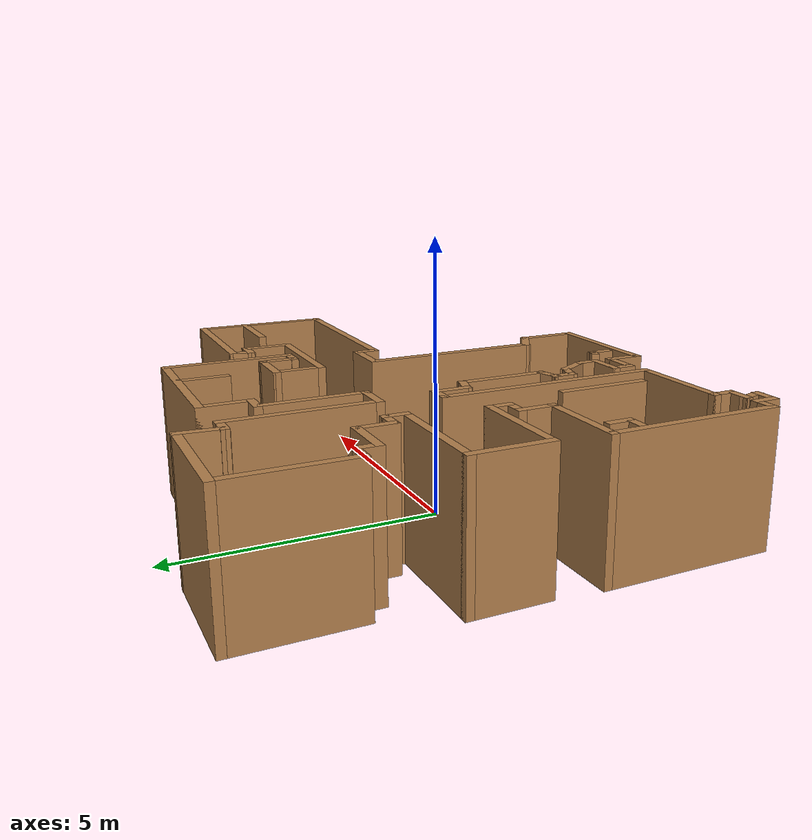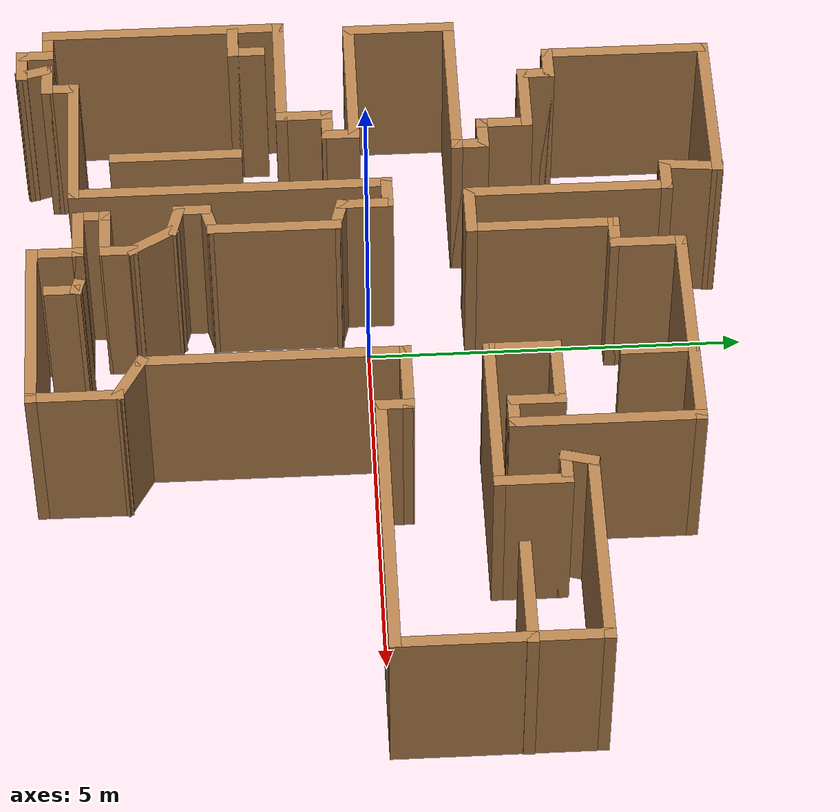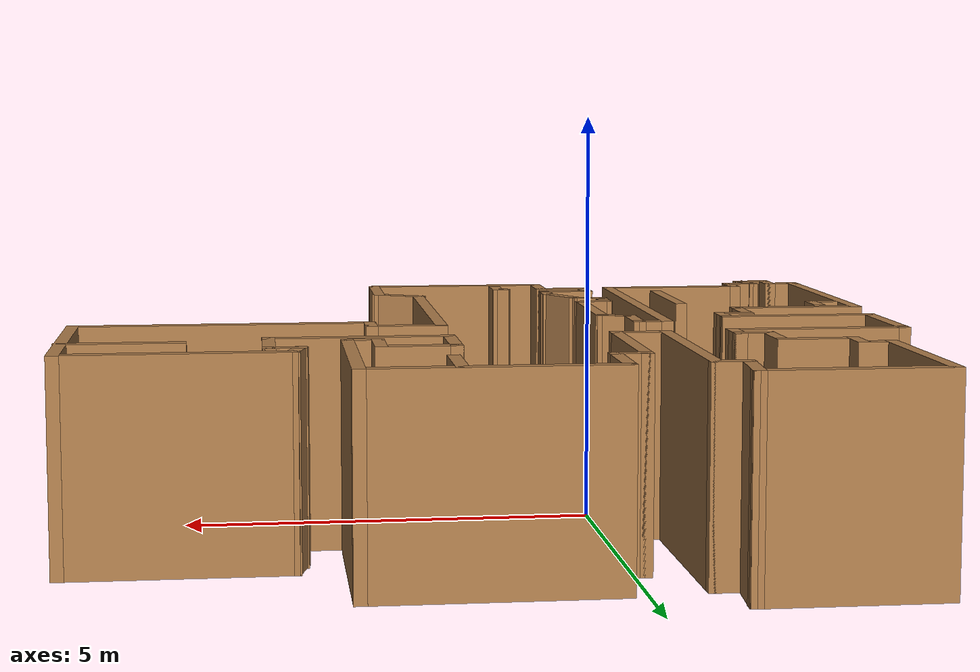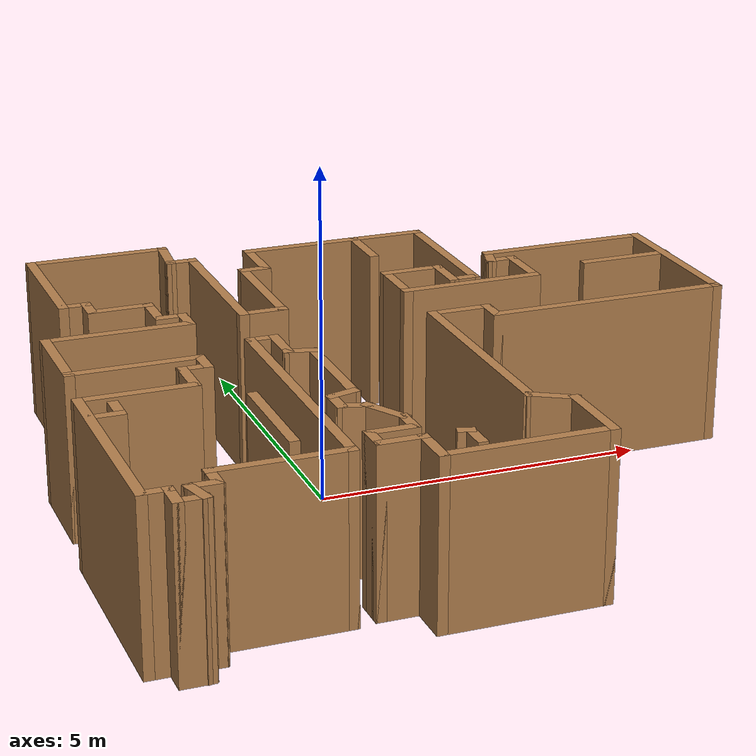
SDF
<?xml version='1.0'?>
<sdf version='1.6'>
  <model name='map_36'>
    <pose frame=''>1.28599 0.073051 0 0 -0 0</pose>
    <link name='Wall_0'>
      <collision name='Wall_0_Collision'>
        <geometry>
          <box>
            <size>2.25 0.15 2.5</size>
          </box>
        </geometry>
        <pose frame=''>0 0 1.25 0 -0 0</pose>
      </collision>
      <visual name='Wall_0_Visual'>
        <pose frame=''>0 0 1.25 0 -0 0</pose>
        <geometry>
          <box>
            <size>2.25 0.15 2.5</size>
          </box>
        </geometry>
        <material>
          <script>
            <uri>file://media/materials/scripts/gazebo.material</uri>
            <name>Gazebo/Wood</name>
          </script>
          <ambient>1 1 1 1</ambient>
        </material>
        <meta>
          <layer>0</layer>
        </meta>
      </visual>
      <pose frame=''>-3.34541 4.58019 0 0 -0 3.14159</pose>
    </link>
    <link name='Wall_1'>
      <collision name='Wall_1_Collision'>
        <geometry>
          <box>
            <size>2.25 0.15 2.5</size>
          </box>
        </geometry>
        <pose frame=''>0 0 1.25 0 -0 0</pose>
      </collision>
      <visual name='Wall_1_Visual'>
        <pose frame=''>0 0 1.25 0 -0 0</pose>
        <geometry>
          <box>
            <size>2.25 0.15 2.5</size>
          </box>
        </geometry>
        <material>
          <script>
            <uri>file://media/materials/scripts/gazebo.material</uri>
            <name>Gazebo/Wood</name>
          </script>
          <ambient>1 1 1 1</ambient>
        </material>
        <meta>
          <layer>0</layer>
        </meta>
      </visual>
      <pose frame=''>-4.39541 3.53019 0 0 -0 -1.5708</pose>
    </link>
    <link name='Wall_100'>
      <collision name='Wall_100_Collision'>
        <geometry>
          <box>
            <size>0.5 0.15 2.5</size>
          </box>
        </geometry>
        <pose frame=''>0 0 1.25 0 -0 0</pose>
      </collision>
      <visual name='Wall_100_Visual'>
        <pose frame=''>0 0 1.25 0 -0 0</pose>
        <geometry>
          <box>
            <size>0.5 0.15 2.5</size>
          </box>
        </geometry>
        <material>
          <script>
            <uri>file://media/materials/scripts/gazebo.material</uri>
            <name>Gazebo/Wood</name>
          </script>
          <ambient>1 1 1 1</ambient>
        </material>
        <meta>
          <layer>0</layer>
        </meta>
      </visual>
      <pose frame=''>-0.62594 -4.0171 0 0 -0 -1.5708</pose>
    </link>
    <link name='Wall_17'>
      <collision name='Wall_17_Collision'>
        <geometry>
          <box>
            <size>1 0.15 2.5</size>
          </box>
        </geometry>
        <pose frame=''>0 0 1.25 0 -0 0</pose>
      </collision>
      <visual name='Wall_17_Visual'>
        <pose frame=''>0 0 1.25 0 -0 0</pose>
        <geometry>
          <box>
            <size>1 0.15 2.5</size>
          </box>
        </geometry>
        <material>
          <script>
            <uri>file://media/materials/scripts/gazebo.material</uri>
            <name>Gazebo/Wood</name>
          </script>
          <ambient>1 1 1 1</ambient>
        </material>
        <meta>
          <layer>0</layer>
        </meta>
      </visual>
      <pose frame=''>-3.62041 2.13019 0 0 -0 0</pose>
    </link>
    <link name='Wall_18'>
      <collision name='Wall_18_Collision'>
        <geometry>
          <box>
            <size>0.75 0.15 2.5</size>
          </box>
        </geometry>
        <pose frame=''>0 0 1.25 0 -0 0</pose>
      </collision>
      <visual name='Wall_18_Visual'>
        <pose frame=''>0 0 1.25 0 -0 0</pose>
        <geometry>
          <box>
            <size>0.75 0.15 2.5</size>
          </box>
        </geometry>
        <material>
          <script>
            <uri>file://media/materials/scripts/gazebo.material</uri>
            <name>Gazebo/Wood</name>
          </script>
          <ambient>1 1 1 1</ambient>
        </material>
        <meta>
          <layer>0</layer>
        </meta>
      </visual>
      <pose frame=''>-3.19541 1.83019 0 0 -0 -1.5708</pose>
    </link>
    <link name='Wall_19'>
      <collision name='Wall_19_Collision'>
        <geometry>
          <box>
            <size>0.5 0.15 2.5</size>
          </box>
        </geometry>
        <pose frame=''>0 0 1.25 0 -0 0</pose>
      </collision>
      <visual name='Wall_19_Visual'>
        <pose frame=''>0 0 1.25 0 -0 0</pose>
        <geometry>
          <box>
            <size>0.5 0.15 2.5</size>
          </box>
        </geometry>
        <material>
          <script>
            <uri>file://media/materials/scripts/gazebo.material</uri>
            <name>Gazebo/Wood</name>
          </script>
          <ambient>1 1 1 1</ambient>
        </material>
        <meta>
          <layer>0</layer>
        </meta>
      </visual>
      <pose frame=''>-3.02041 1.53019 0 0 -0 0</pose>
    </link>
    <link name='Wall_2'>
      <collision name='Wall_2_Collision'>
        <geometry>
          <box>
            <size>0.5 0.15 2.5</size>
          </box>
        </geometry>
        <pose frame=''>0 0 1.25 0 -0 0</pose>
      </collision>
      <visual name='Wall_2_Visual'>
        <pose frame=''>0 0 1.25 0 -0 0</pose>
        <geometry>
          <box>
            <size>0.5 0.15 2.5</size>
          </box>
        </geometry>
        <material>
          <script>
            <uri>file://media/materials/scripts/gazebo.material</uri>
            <name>Gazebo/Wood</name>
          </script>
          <ambient>1 1 1 1</ambient>
        </material>
        <meta>
          <layer>0</layer>
        </meta>
      </visual>
      <pose frame=''>-4.22041 2.48019 0 0 -0 0</pose>
    </link>
    <link name='Wall_20'>
      <collision name='Wall_20_Collision'>
        <geometry>
          <box>
            <size>0.5 0.15 2.5</size>
          </box>
        </geometry>
        <pose frame=''>0 0 1.25 0 -0 0</pose>
      </collision>
      <visual name='Wall_20_Visual'>
        <pose frame=''>0 0 1.25 0 -0 0</pose>
        <geometry>
          <box>
            <size>0.5 0.15 2.5</size>
          </box>
        </geometry>
        <material>
          <script>
            <uri>file://media/materials/scripts/gazebo.material</uri>
            <name>Gazebo/Wood</name>
          </script>
          <ambient>1 1 1 1</ambient>
        </material>
        <meta>
          <layer>0</layer>
        </meta>
      </visual>
      <pose frame=''>-2.84541 1.35519 0 0 -0 -1.5708</pose>
    </link>
    <link name='Wall_21'>
      <collision name='Wall_21_Collision'>
        <geometry>
          <box>
            <size>2.25 0.15 2.5</size>
          </box>
        </geometry>
        <pose frame=''>0 0 1.25 0 -0 0</pose>
      </collision>
      <visual name='Wall_21_Visual'>
        <pose frame=''>0 0 1.25 0 -0 0</pose>
        <geometry>
          <box>
            <size>2.25 0.15 2.5</size>
          </box>
        </geometry>
        <material>
          <script>
            <uri>file://media/materials/scripts/gazebo.material</uri>
            <name>Gazebo/Wood</name>
          </script>
          <ambient>1 1 1 1</ambient>
        </material>
        <meta>
          <layer>0</layer>
        </meta>
      </visual>
      <pose frame=''>-3.89541 1.18019 0 0 -0 3.14159</pose>
    </link>
    <link name='Wall_22'>
      <collision name='Wall_22_Collision'>
        <geometry>
          <box>
            <size>1.5 0.15 2.5</size>
          </box>
        </geometry>
        <pose frame=''>0 0 1.25 0 -0 0</pose>
      </collision>
      <visual name='Wall_22_Visual'>
        <pose frame=''>0 0 1.25 0 -0 0</pose>
        <geometry>
          <box>
            <size>1.5 0.15 2.5</size>
          </box>
        </geometry>
        <material>
          <script>
            <uri>file://media/materials/scripts/gazebo.material</uri>
            <name>Gazebo/Wood</name>
          </script>
          <ambient>1 1 1 1</ambient>
        </material>
        <meta>
          <layer>0</layer>
        </meta>
      </visual>
      <pose frame=''>-4.94541 0.505193 0 0 -0 -1.5708</pose>
    </link>
    <link name='Wall_23'>
      <collision name='Wall_23_Collision'>
        <geometry>
          <box>
            <size>2 0.15 2.5</size>
          </box>
        </geometry>
        <pose frame=''>0 0 1.25 0 -0 0</pose>
      </collision>
      <visual name='Wall_23_Visual'>
        <pose frame=''>0 0 1.25 0 -0 0</pose>
        <geometry>
          <box>
            <size>2 0.15 2.5</size>
          </box>
        </geometry>
        <material>
          <script>
            <uri>file://media/materials/scripts/gazebo.material</uri>
            <name>Gazebo/Wood</name>
          </script>
          <ambient>1 1 1 1</ambient>
        </material>
        <meta>
          <layer>0</layer>
        </meta>
      </visual>
      <pose frame=''>-4.02041 -0.169807 0 0 -0 0</pose>
    </link>
    <link name='Wall_26'>
      <collision name='Wall_26_Collision'>
        <geometry>
          <box>
            <size>0.5 0.15 2.5</size>
          </box>
        </geometry>
        <pose frame=''>0 0 1.25 0 -0 0</pose>
      </collision>
      <visual name='Wall_26_Visual'>
        <pose frame=''>0 0 1.25 0 -0 0</pose>
        <geometry>
          <box>
            <size>0.5 0.15 2.5</size>
          </box>
        </geometry>
        <material>
          <script>
            <uri>file://media/materials/scripts/gazebo.material</uri>
            <name>Gazebo/Wood</name>
          </script>
          <ambient>1 1 1 1</ambient>
        </material>
        <meta>
          <layer>0</layer>
        </meta>
      </visual>
      <pose frame=''>-3.09541 -0.344807 0 0 -0 -1.5708</pose>
    </link>
    <link name='Wall_27'>
      <collision name='Wall_27_Collision'>
        <geometry>
          <box>
            <size>0.5 0.15 2.5</size>
          </box>
        </geometry>
        <pose frame=''>0 0 1.25 0 -0 0</pose>
      </collision>
      <visual name='Wall_27_Visual'>
        <pose frame=''>0 0 1.25 0 -0 0</pose>
        <geometry>
          <box>
            <size>0.5 0.15 2.5</size>
          </box>
        </geometry>
        <material>
          <script>
            <uri>file://media/materials/scripts/gazebo.material</uri>
            <name>Gazebo/Wood</name>
          </script>
          <ambient>1 1 1 1</ambient>
        </material>
        <meta>
          <layer>0</layer>
        </meta>
      </visual>
      <pose frame=''>-3.27041 -0.519807 0 0 -0 3.14159</pose>
    </link>
    <link name='Wall_28'>
      <collision name='Wall_28_Collision'>
        <geometry>
          <box>
            <size>0.75 0.15 2.5</size>
          </box>
        </geometry>
        <pose frame=''>0 0 1.25 0 -0 0</pose>
      </collision>
      <visual name='Wall_28_Visual'>
        <pose frame=''>0 0 1.25 0 -0 0</pose>
        <geometry>
          <box>
            <size>0.75 0.15 2.5</size>
          </box>
        </geometry>
        <material>
          <script>
            <uri>file://media/materials/scripts/gazebo.material</uri>
            <name>Gazebo/Wood</name>
          </script>
          <ambient>1 1 1 1</ambient>
        </material>
        <meta>
          <layer>0</layer>
        </meta>
      </visual>
      <pose frame=''>-3.44541 -0.819807 0 0 -0 -1.5708</pose>
    </link>
    <link name='Wall_29'>
      <collision name='Wall_29_Collision'>
        <geometry>
          <box>
            <size>1.75 0.15 2.5</size>
          </box>
        </geometry>
        <pose frame=''>0 0 1.25 0 -0 0</pose>
      </collision>
      <visual name='Wall_29_Visual'>
        <pose frame=''>0 0 1.25 0 -0 0</pose>
        <geometry>
          <box>
            <size>1.75 0.15 2.5</size>
          </box>
        </geometry>
        <material>
          <script>
            <uri>file://media/materials/scripts/gazebo.material</uri>
            <name>Gazebo/Wood</name>
          </script>
          <ambient>1 1 1 1</ambient>
        </material>
        <meta>
          <layer>0</layer>
        </meta>
      </visual>
      <pose frame=''>-4.24541 -1.11981 0 0 -0 3.14159</pose>
    </link>
    <link name='Wall_3'>
      <collision name='Wall_3_Collision'>
        <geometry>
          <box>
            <size>0.5 0.15 2.5</size>
          </box>
        </geometry>
        <pose frame=''>0 0 1.25 0 -0 0</pose>
      </collision>
      <visual name='Wall_3_Visual'>
        <pose frame=''>0 0 1.25 0 -0 0</pose>
        <geometry>
          <box>
            <size>0.5 0.15 2.5</size>
          </box>
        </geometry>
        <material>
          <script>
            <uri>file://media/materials/scripts/gazebo.material</uri>
            <name>Gazebo/Wood</name>
          </script>
          <ambient>1 1 1 1</ambient>
        </material>
        <meta>
          <layer>0</layer>
        </meta>
      </visual>
      <pose frame=''>-4.04541 2.30519 0 0 -0 -1.5708</pose>
    </link>
    <link name='Wall_30'>
      <collision name='Wall_30_Collision'>
        <geometry>
          <box>
            <size>3.25 0.15 2.5</size>
          </box>
        </geometry>
        <pose frame=''>0 0 1.25 0 -0 0</pose>
      </collision>
      <visual name='Wall_30_Visual'>
        <pose frame=''>0 0 1.25 0 -0 0</pose>
        <geometry>
          <box>
            <size>3.25 0.15 2.5</size>
          </box>
        </geometry>
        <material>
          <script>
            <uri>file://media/materials/scripts/gazebo.material</uri>
            <name>Gazebo/Wood</name>
          </script>
          <ambient>1 1 1 1</ambient>
        </material>
        <meta>
          <layer>0</layer>
        </meta>
      </visual>
      <pose frame=''>-5.04541 -2.66981 0 0 -0 -1.5708</pose>
    </link>
    <link name='Wall_31'>
      <collision name='Wall_31_Collision'>
        <geometry>
          <box>
            <size>0.5 0.15 2.5</size>
          </box>
        </geometry>
        <pose frame=''>0 0 1.25 0 -0 0</pose>
      </collision>
      <visual name='Wall_31_Visual'>
        <pose frame=''>0 0 1.25 0 -0 0</pose>
        <geometry>
          <box>
            <size>0.5 0.15 2.5</size>
          </box>
        </geometry>
        <material>
          <script>
            <uri>file://media/materials/scripts/gazebo.material</uri>
            <name>Gazebo/Wood</name>
          </script>
          <ambient>1 1 1 1</ambient>
        </material>
        <meta>
          <layer>0</layer>
        </meta>
      </visual>
      <pose frame=''>-4.87041 -4.21981 0 0 -0 0</pose>
    </link>
    <link name='Wall_35'>
      <collision name='Wall_35_Collision'>
        <geometry>
          <box>
            <size>0.5 0.15 2.5</size>
          </box>
        </geometry>
        <pose frame=''>0 0 1.25 0 -0 0</pose>
      </collision>
      <visual name='Wall_35_Visual'>
        <pose frame=''>0 0 1.25 0 -0 0</pose>
        <geometry>
          <box>
            <size>0.5 0.15 2.5</size>
          </box>
        </geometry>
        <material>
          <script>
            <uri>file://media/materials/scripts/gazebo.material</uri>
            <name>Gazebo/Wood</name>
          </script>
          <ambient>1 1 1 1</ambient>
        </material>
        <meta>
          <layer>0</layer>
        </meta>
      </visual>
      <pose frame=''>-4.69541 -4.39481 0 0 -0 -1.5708</pose>
    </link>
    <link name='Wall_36'>
      <collision name='Wall_36_Collision'>
        <geometry>
          <box>
            <size>0.5 0.15 2.5</size>
          </box>
        </geometry>
        <pose frame=''>0 0 1.25 0 -0 0</pose>
      </collision>
      <visual name='Wall_36_Visual'>
        <pose frame=''>0 0 1.25 0 -0 0</pose>
        <geometry>
          <box>
            <size>0.5 0.15 2.5</size>
          </box>
        </geometry>
        <material>
          <script>
            <uri>file://media/materials/scripts/gazebo.material</uri>
            <name>Gazebo/Wood</name>
          </script>
          <ambient>1 1 1 1</ambient>
        </material>
        <meta>
          <layer>0</layer>
        </meta>
      </visual>
      <pose frame=''>-4.52041 -4.56981 0 0 -0 0</pose>
    </link>
    <link name='Wall_37'>
      <collision name='Wall_37_Collision'>
        <geometry>
          <box>
            <size>0.5 0.15 2.5</size>
          </box>
        </geometry>
        <pose frame=''>0 0 1.25 0 -0 0</pose>
      </collision>
      <visual name='Wall_37_Visual'>
        <pose frame=''>0 0 1.25 0 -0 0</pose>
        <geometry>
          <box>
            <size>0.5 0.15 2.5</size>
          </box>
        </geometry>
        <material>
          <script>
            <uri>file://media/materials/scripts/gazebo.material</uri>
            <name>Gazebo/Wood</name>
          </script>
          <ambient>1 1 1 1</ambient>
        </material>
        <meta>
          <layer>0</layer>
        </meta>
      </visual>
      <pose frame=''>-4.39071 -4.40077 0 0 -0 1.8326</pose>
    </link>
    <link name='Wall_38'>
      <collision name='Wall_38_Collision'>
        <geometry>
          <box>
            <size>0.5 0.15 2.5</size>
          </box>
        </geometry>
        <pose frame=''>0 0 1.25 0 -0 0</pose>
      </collision>
      <visual name='Wall_38_Visual'>
        <pose frame=''>0 0 1.25 0 -0 0</pose>
        <geometry>
          <box>
            <size>0.5 0.15 2.5</size>
          </box>
        </geometry>
        <material>
          <script>
            <uri>file://media/materials/scripts/gazebo.material</uri>
            <name>Gazebo/Wood</name>
          </script>
          <ambient>1 1 1 1</ambient>
        </material>
        <meta>
          <layer>0</layer>
        </meta>
      </visual>
      <pose frame=''>-4.261 -4.23173 0 0 -0 0</pose>
    </link>
    <link name='Wall_39'>
      <collision name='Wall_39_Collision'>
        <geometry>
          <box>
            <size>0.5 0.15 2.5</size>
          </box>
        </geometry>
        <pose frame=''>0 0 1.25 0 -0 0</pose>
      </collision>
      <visual name='Wall_39_Visual'>
        <pose frame=''>0 0 1.25 0 -0 0</pose>
        <geometry>
          <box>
            <size>0.5 0.15 2.5</size>
          </box>
        </geometry>
        <material>
          <script>
            <uri>file://media/materials/scripts/gazebo.material</uri>
            <name>Gazebo/Wood</name>
          </script>
          <ambient>1 1 1 1</ambient>
        </material>
        <meta>
          <layer>0</layer>
        </meta>
      </visual>
      <pose frame=''>-4.086 -4.05673 0 0 -0 1.5708</pose>
    </link>
    <link name='Wall_40'>
      <collision name='Wall_40_Collision'>
        <geometry>
          <box>
            <size>2 0.15 2.5</size>
          </box>
        </geometry>
        <pose frame=''>0 0 1.25 0 -0 0</pose>
      </collision>
      <visual name='Wall_40_Visual'>
        <pose frame=''>0 0 1.25 0 -0 0</pose>
        <geometry>
          <box>
            <size>2 0.15 2.5</size>
          </box>
        </geometry>
        <material>
          <script>
            <uri>file://media/materials/scripts/gazebo.material</uri>
            <name>Gazebo/Wood</name>
          </script>
          <ambient>1 1 1 1</ambient>
        </material>
        <meta>
          <layer>0</layer>
        </meta>
      </visual>
      <pose frame=''>-3.161 -3.88173 0 0 -0 0</pose>
    </link>
    <link name='Wall_41'>
      <collision name='Wall_41_Collision'>
        <geometry>
          <box>
            <size>4.25 0.15 2.5</size>
          </box>
        </geometry>
        <pose frame=''>0 0 1.25 0 -0 0</pose>
      </collision>
      <visual name='Wall_41_Visual'>
        <pose frame=''>0 0 1.25 0 -0 0</pose>
        <geometry>
          <box>
            <size>4.25 0.15 2.5</size>
          </box>
        </geometry>
        <material>
          <script>
            <uri>file://media/materials/scripts/gazebo.material</uri>
            <name>Gazebo/Wood</name>
          </script>
          <ambient>1 1 1 1</ambient>
        </material>
        <meta>
          <layer>0</layer>
        </meta>
      </visual>
      <pose frame=''>-2.236 -1.83173 0 0 -0 1.5708</pose>
    </link>
    <link name='Wall_42'>
      <collision name='Wall_42_Collision'>
        <geometry>
          <box>
            <size>0.5 0.15 2.5</size>
          </box>
        </geometry>
        <pose frame=''>0 0 1.25 0 -0 0</pose>
      </collision>
      <visual name='Wall_42_Visual'>
        <pose frame=''>0 0 1.25 0 -0 0</pose>
        <geometry>
          <box>
            <size>0.5 0.15 2.5</size>
          </box>
        </geometry>
        <material>
          <script>
            <uri>file://media/materials/scripts/gazebo.material</uri>
            <name>Gazebo/Wood</name>
          </script>
          <ambient>1 1 1 1</ambient>
        </material>
        <meta>
          <layer>0</layer>
        </meta>
      </visual>
      <pose frame=''>-2.061 0.218267 0 0 -0 0</pose>
    </link>
    <link name='Wall_43'>
      <collision name='Wall_43_Collision'>
        <geometry>
          <box>
            <size>0.75 0.15 2.5</size>
          </box>
        </geometry>
        <pose frame=''>0 0 1.25 0 -0 0</pose>
      </collision>
      <visual name='Wall_43_Visual'>
        <pose frame=''>0 0 1.25 0 -0 0</pose>
        <geometry>
          <box>
            <size>0.75 0.15 2.5</size>
          </box>
        </geometry>
        <material>
          <script>
            <uri>file://media/materials/scripts/gazebo.material</uri>
            <name>Gazebo/Wood</name>
          </script>
          <ambient>1 1 1 1</ambient>
        </material>
        <meta>
          <layer>0</layer>
        </meta>
      </visual>
      <pose frame=''>-1.886 -0.081733 0 0 -0 -1.5708</pose>
    </link>
    <link name='Wall_44'>
      <collision name='Wall_44_Collision'>
        <geometry>
          <box>
            <size>0.5 0.15 2.5</size>
          </box>
        </geometry>
        <pose frame=''>0 0 1.25 0 -0 0</pose>
      </collision>
      <visual name='Wall_44_Visual'>
        <pose frame=''>0 0 1.25 0 -0 0</pose>
        <geometry>
          <box>
            <size>0.5 0.15 2.5</size>
          </box>
        </geometry>
        <material>
          <script>
            <uri>file://media/materials/scripts/gazebo.material</uri>
            <name>Gazebo/Wood</name>
          </script>
          <ambient>1 1 1 1</ambient>
        </material>
        <meta>
          <layer>0</layer>
        </meta>
      </visual>
      <pose frame=''>-1.71696 -0.427026 0 0 -0 -0.261799</pose>
    </link>
    <link name='Wall_45'>
      <collision name='Wall_45_Collision'>
        <geometry>
          <box>
            <size>1.75 0.15 2.5</size>
          </box>
        </geometry>
        <pose frame=''>0 0 1.25 0 -0 0</pose>
      </collision>
      <visual name='Wall_45_Visual'>
        <pose frame=''>0 0 1.25 0 -0 0</pose>
        <geometry>
          <box>
            <size>1.75 0.15 2.5</size>
          </box>
        </geometry>
        <material>
          <script>
            <uri>file://media/materials/scripts/gazebo.material</uri>
            <name>Gazebo/Wood</name>
          </script>
          <ambient>1 1 1 1</ambient>
        </material>
        <meta>
          <layer>0</layer>
        </meta>
      </visual>
      <pose frame=''>-1.54793 -1.27232 0 0 -0 -1.5708</pose>
    </link>
    <link name='Wall_46'>
      <collision name='Wall_46_Collision'>
        <geometry>
          <box>
            <size>0.5 0.15 2.5</size>
          </box>
        </geometry>
        <pose frame=''>0 0 1.25 0 -0 0</pose>
      </collision>
      <visual name='Wall_46_Visual'>
        <pose frame=''>0 0 1.25 0 -0 0</pose>
        <geometry>
          <box>
            <size>0.5 0.15 2.5</size>
          </box>
        </geometry>
        <material>
          <script>
            <uri>file://media/materials/scripts/gazebo.material</uri>
            <name>Gazebo/Wood</name>
          </script>
          <ambient>1 1 1 1</ambient>
        </material>
        <meta>
          <layer>0</layer>
        </meta>
      </visual>
      <pose frame=''>-1.71696 -2.11761 0 0 -0 -2.87979</pose>
    </link>
    <link name='Wall_47'>
      <collision name='Wall_47_Collision'>
        <geometry>
          <box>
            <size>0.5 0.15 2.5</size>
          </box>
        </geometry>
        <pose frame=''>0 0 1.25 0 -0 0</pose>
      </collision>
      <visual name='Wall_47_Visual'>
        <pose frame=''>0 0 1.25 0 -0 0</pose>
        <geometry>
          <box>
            <size>0.5 0.15 2.5</size>
          </box>
        </geometry>
        <material>
          <script>
            <uri>file://media/materials/scripts/gazebo.material</uri>
            <name>Gazebo/Wood</name>
          </script>
          <ambient>1 1 1 1</ambient>
        </material>
        <meta>
          <layer>0</layer>
        </meta>
      </visual>
      <pose frame=''>-1.886 -2.33791 0 0 -0 -1.5708</pose>
    </link>
    <link name='Wall_48'>
      <collision name='Wall_48_Collision'>
        <geometry>
          <box>
            <size>0.5 0.15 2.5</size>
          </box>
        </geometry>
        <pose frame=''>0 0 1.25 0 -0 0</pose>
      </collision>
      <visual name='Wall_48_Visual'>
        <pose frame=''>0 0 1.25 0 -0 0</pose>
        <geometry>
          <box>
            <size>0.5 0.15 2.5</size>
          </box>
        </geometry>
        <material>
          <script>
            <uri>file://media/materials/scripts/gazebo.material</uri>
            <name>Gazebo/Wood</name>
          </script>
          <ambient>1 1 1 1</ambient>
        </material>
        <meta>
          <layer>0</layer>
        </meta>
      </visual>
      <pose frame=''>-1.71696 -2.5582 0 0 -0 -0.261799</pose>
    </link>
    <link name='Wall_49'>
      <collision name='Wall_49_Collision'>
        <geometry>
          <box>
            <size>0.75 0.15 2.5</size>
          </box>
        </geometry>
        <pose frame=''>0 0 1.25 0 -0 0</pose>
      </collision>
      <visual name='Wall_49_Visual'>
        <pose frame=''>0 0 1.25 0 -0 0</pose>
        <geometry>
          <box>
            <size>0.75 0.15 2.5</size>
          </box>
        </geometry>
        <material>
          <script>
            <uri>file://media/materials/scripts/gazebo.material</uri>
            <name>Gazebo/Wood</name>
          </script>
          <ambient>1 1 1 1</ambient>
        </material>
        <meta>
          <layer>0</layer>
        </meta>
      </visual>
      <pose frame=''>-1.39793 -2.8633 0 0 -0 -1.0472</pose>
    </link>
    <link name='Wall_50'>
      <collision name='Wall_50_Collision'>
        <geometry>
          <box>
            <size>0.5 0.15 2.5</size>
          </box>
        </geometry>
        <pose frame=''>0 0 1.25 0 -0 0</pose>
      </collision>
      <visual name='Wall_50_Visual'>
        <pose frame=''>0 0 1.25 0 -0 0</pose>
        <geometry>
          <box>
            <size>0.5 0.15 2.5</size>
          </box>
        </geometry>
        <material>
          <script>
            <uri>file://media/materials/scripts/gazebo.material</uri>
            <name>Gazebo/Wood</name>
          </script>
          <ambient>1 1 1 1</ambient>
        </material>
        <meta>
          <layer>0</layer>
        </meta>
      </visual>
      <pose frame=''>-1.24793 -3.29811 0 0 -0 -1.5708</pose>
    </link>
    <link name='Wall_51'>
      <collision name='Wall_51_Collision'>
        <geometry>
          <box>
            <size>0.75 0.15 2.5</size>
          </box>
        </geometry>
        <pose frame=''>0 0 1.25 0 -0 0</pose>
      </collision>
      <visual name='Wall_51_Visual'>
        <pose frame=''>0 0 1.25 0 -0 0</pose>
        <geometry>
          <box>
            <size>0.75 0.15 2.5</size>
          </box>
        </geometry>
        <material>
          <script>
            <uri>file://media/materials/scripts/gazebo.material</uri>
            <name>Gazebo/Wood</name>
          </script>
          <ambient>1 1 1 1</ambient>
        </material>
        <meta>
          <layer>0</layer>
        </meta>
      </visual>
      <pose frame=''>-1.54793 -3.47311 0 0 -0 3.14159</pose>
    </link>
    <link name='Wall_52'>
      <collision name='Wall_52_Collision'>
        <geometry>
          <box>
            <size>0.5 0.15 2.5</size>
          </box>
        </geometry>
        <pose frame=''>0 0 1.25 0 -0 0</pose>
      </collision>
      <visual name='Wall_52_Visual'>
        <pose frame=''>0 0 1.25 0 -0 0</pose>
        <geometry>
          <box>
            <size>0.5 0.15 2.5</size>
          </box>
        </geometry>
        <material>
          <script>
            <uri>file://media/materials/scripts/gazebo.material</uri>
            <name>Gazebo/Wood</name>
          </script>
          <ambient>1 1 1 1</ambient>
        </material>
        <meta>
          <layer>0</layer>
        </meta>
      </visual>
      <pose frame=''>-1.84793 -3.64811 0 0 -0 -1.5708</pose>
    </link>
    <link name='Wall_53'>
      <collision name='Wall_53_Collision'>
        <geometry>
          <box>
            <size>0.75 0.15 2.5</size>
          </box>
        </geometry>
        <pose frame=''>0 0 1.25 0 -0 0</pose>
      </collision>
      <visual name='Wall_53_Visual'>
        <pose frame=''>0 0 1.25 0 -0 0</pose>
        <geometry>
          <box>
            <size>0.75 0.15 2.5</size>
          </box>
        </geometry>
        <material>
          <script>
            <uri>file://media/materials/scripts/gazebo.material</uri>
            <name>Gazebo/Wood</name>
          </script>
          <ambient>1 1 1 1</ambient>
        </material>
        <meta>
          <layer>0</layer>
        </meta>
      </visual>
      <pose frame=''>-1.54793 -3.82311 0 0 -0 0</pose>
    </link>
    <link name='Wall_54'>
      <collision name='Wall_54_Collision'>
        <geometry>
          <box>
            <size>0.75 0.15 2.5</size>
          </box>
        </geometry>
        <pose frame=''>0 0 1.25 0 -0 0</pose>
      </collision>
      <visual name='Wall_54_Visual'>
        <pose frame=''>0 0 1.25 0 -0 0</pose>
        <geometry>
          <box>
            <size>0.75 0.15 2.5</size>
          </box>
        </geometry>
        <material>
          <script>
            <uri>file://media/materials/scripts/gazebo.material</uri>
            <name>Gazebo/Wood</name>
          </script>
          <ambient>1 1 1 1</ambient>
        </material>
        <meta>
          <layer>0</layer>
        </meta>
      </visual>
      <pose frame=''>-1.24793 -4.12311 0 0 -0 -1.5708</pose>
    </link>
    <link name='Wall_57'>
      <collision name='Wall_57_Collision'>
        <geometry>
          <box>
            <size>2.5 0.15 2.5</size>
          </box>
        </geometry>
        <pose frame=''>0 0 1.25 0 -0 0</pose>
      </collision>
      <visual name='Wall_57_Visual'>
        <pose frame=''>0 0 1.25 0 -0 0</pose>
        <geometry>
          <box>
            <size>2.5 0.15 2.5</size>
          </box>
        </geometry>
        <material>
          <script>
            <uri>file://media/materials/scripts/gazebo.material</uri>
            <name>Gazebo/Wood</name>
          </script>
          <ambient>1 1 1 1</ambient>
        </material>
        <meta>
          <layer>0</layer>
        </meta>
      </visual>
      <pose frame=''>-0.072926 -4.42311 0 0 -0 0</pose>
    </link>
    <link name='Wall_58'>
      <collision name='Wall_58_Collision'>
        <geometry>
          <box>
            <size>1.25 0.15 2.5</size>
          </box>
        </geometry>
        <pose frame=''>0 0 1.25 0 -0 0</pose>
      </collision>
      <visual name='Wall_58_Visual'>
        <pose frame=''>0 0 1.25 0 -0 0</pose>
        <geometry>
          <box>
            <size>1.25 0.15 2.5</size>
          </box>
        </geometry>
        <material>
          <script>
            <uri>file://media/materials/scripts/gazebo.material</uri>
            <name>Gazebo/Wood</name>
          </script>
          <ambient>1 1 1 1</ambient>
        </material>
        <meta>
          <layer>0</layer>
        </meta>
      </visual>
      <pose frame=''>1.10207 -3.87311 0 0 -0 1.5708</pose>
    </link>
    <link name='Wall_59'>
      <collision name='Wall_59_Collision'>
        <geometry>
          <box>
            <size>0.75 0.15 2.5</size>
          </box>
        </geometry>
        <pose frame=''>0 0 1.25 0 -0 0</pose>
      </collision>
      <visual name='Wall_59_Visual'>
        <pose frame=''>0 0 1.25 0 -0 0</pose>
        <geometry>
          <box>
            <size>0.75 0.15 2.5</size>
          </box>
        </geometry>
        <material>
          <script>
            <uri>file://media/materials/scripts/gazebo.material</uri>
            <name>Gazebo/Wood</name>
          </script>
          <ambient>1 1 1 1</ambient>
        </material>
        <meta>
          <layer>0</layer>
        </meta>
      </visual>
      <pose frame=''>0.842266 -3.17311 0 0 -0 2.61799</pose>
    </link>
    <link name='Wall_60'>
      <collision name='Wall_60_Collision'>
        <geometry>
          <box>
            <size>3.5 0.15 2.5</size>
          </box>
        </geometry>
        <pose frame=''>0 0 1.25 0 -0 0</pose>
      </collision>
      <visual name='Wall_60_Visual'>
        <pose frame=''>0 0 1.25 0 -0 0</pose>
        <geometry>
          <box>
            <size>3.5 0.15 2.5</size>
          </box>
        </geometry>
        <material>
          <script>
            <uri>file://media/materials/scripts/gazebo.material</uri>
            <name>Gazebo/Wood</name>
          </script>
          <ambient>1 1 1 1</ambient>
        </material>
        <meta>
          <layer>0</layer>
        </meta>
      </visual>
      <pose frame=''>0.582459 -1.34811 0 0 -0 1.5708</pose>
    </link>
    <link name='Wall_65'>
      <collision name='Wall_65_Collision'>
        <geometry>
          <box>
            <size>1 0.15 2.5</size>
          </box>
        </geometry>
        <pose frame=''>0 0 1.25 0 -0 0</pose>
      </collision>
      <visual name='Wall_65_Visual'>
        <pose frame=''>0 0 1.25 0 -0 0</pose>
        <geometry>
          <box>
            <size>1 0.15 2.5</size>
          </box>
        </geometry>
        <material>
          <script>
            <uri>file://media/materials/scripts/gazebo.material</uri>
            <name>Gazebo/Wood</name>
          </script>
          <ambient>1 1 1 1</ambient>
        </material>
        <meta>
          <layer>0</layer>
        </meta>
      </visual>
      <pose frame=''>1.00746 0.326892 0 0 -0 0</pose>
    </link>
    <link name='Wall_66'>
      <collision name='Wall_66_Collision'>
        <geometry>
          <box>
            <size>0.5 0.15 2.5</size>
          </box>
        </geometry>
        <pose frame=''>0 0 1.25 0 -0 0</pose>
      </collision>
      <visual name='Wall_66_Visual'>
        <pose frame=''>0 0 1.25 0 -0 0</pose>
        <geometry>
          <box>
            <size>0.5 0.15 2.5</size>
          </box>
        </geometry>
        <material>
          <script>
            <uri>file://media/materials/scripts/gazebo.material</uri>
            <name>Gazebo/Wood</name>
          </script>
          <ambient>1 1 1 1</ambient>
        </material>
        <meta>
          <layer>0</layer>
        </meta>
      </visual>
      <pose frame=''>1.43246 0.151892 0 0 -0 -1.5708</pose>
    </link>
    <link name='Wall_67'>
      <collision name='Wall_67_Collision'>
        <geometry>
          <box>
            <size>3.75 0.15 2.5</size>
          </box>
        </geometry>
        <pose frame=''>0 0 1.25 0 -0 0</pose>
      </collision>
      <visual name='Wall_67_Visual'>
        <pose frame=''>0 0 1.25 0 -0 0</pose>
        <geometry>
          <box>
            <size>3.75 0.15 2.5</size>
          </box>
        </geometry>
        <material>
          <script>
            <uri>file://media/materials/scripts/gazebo.material</uri>
            <name>Gazebo/Wood</name>
          </script>
          <ambient>1 1 1 1</ambient>
        </material>
        <meta>
          <layer>0</layer>
        </meta>
      </visual>
      <pose frame=''>3.23246 -0.023108 0 0 -0 0</pose>
    </link>
    <link name='Wall_68'>
      <collision name='Wall_68_Collision'>
        <geometry>
          <box>
            <size>2.75 0.15 2.5</size>
          </box>
        </geometry>
        <pose frame=''>0 0 1.25 0 -0 0</pose>
      </collision>
      <visual name='Wall_68_Visual'>
        <pose frame=''>0 0 1.25 0 -0 0</pose>
        <geometry>
          <box>
            <size>2.75 0.15 2.5</size>
          </box>
        </geometry>
        <material>
          <script>
            <uri>file://media/materials/scripts/gazebo.material</uri>
            <name>Gazebo/Wood</name>
          </script>
          <ambient>1 1 1 1</ambient>
        </material>
        <meta>
          <layer>0</layer>
        </meta>
      </visual>
      <pose frame=''>5.03246 1.27689 0 0 -0 1.5708</pose>
    </link>
    <link name='Wall_69'>
      <collision name='Wall_69_Collision'>
        <geometry>
          <box>
            <size>2.75 0.15 2.5</size>
          </box>
        </geometry>
        <pose frame=''>0 0 1.25 0 -0 0</pose>
      </collision>
      <visual name='Wall_69_Visual'>
        <pose frame=''>0 0 1.25 0 -0 0</pose>
        <geometry>
          <box>
            <size>2.75 0.15 2.5</size>
          </box>
        </geometry>
        <material>
          <script>
            <uri>file://media/materials/scripts/gazebo.material</uri>
            <name>Gazebo/Wood</name>
          </script>
          <ambient>1 1 1 1</ambient>
        </material>
        <meta>
          <layer>0</layer>
        </meta>
      </visual>
      <pose frame=''>3.73246 2.57689 0 0 -0 3.14159</pose>
    </link>
    <link name='Wall_70'>
      <collision name='Wall_70_Collision'>
        <geometry>
          <box>
            <size>0.5 0.15 2.5</size>
          </box>
        </geometry>
        <pose frame=''>0 0 1.25 0 -0 0</pose>
      </collision>
      <visual name='Wall_70_Visual'>
        <pose frame=''>0 0 1.25 0 -0 0</pose>
        <geometry>
          <box>
            <size>0.5 0.15 2.5</size>
          </box>
        </geometry>
        <material>
          <script>
            <uri>file://media/materials/scripts/gazebo.material</uri>
            <name>Gazebo/Wood</name>
          </script>
          <ambient>1 1 1 1</ambient>
        </material>
        <meta>
          <layer>0</layer>
        </meta>
      </visual>
      <pose frame=''>2.38716 2.40786 0 0 -0 -1.8326</pose>
    </link>
    <link name='Wall_71'>
      <collision name='Wall_71_Collision'>
        <geometry>
          <box>
            <size>0.5 0.15 2.5</size>
          </box>
        </geometry>
        <pose frame=''>0 0 1.25 0 -0 0</pose>
      </collision>
      <visual name='Wall_71_Visual'>
        <pose frame=''>0 0 1.25 0 -0 0</pose>
        <geometry>
          <box>
            <size>0.5 0.15 2.5</size>
          </box>
        </geometry>
        <material>
          <script>
            <uri>file://media/materials/scripts/gazebo.material</uri>
            <name>Gazebo/Wood</name>
          </script>
          <ambient>1 1 1 1</ambient>
        </material>
        <meta>
          <layer>0</layer>
        </meta>
      </visual>
      <pose frame=''>2.51687 2.23882 0 0 -0 0</pose>
    </link>
    <link name='Wall_72'>
      <collision name='Wall_72_Collision'>
        <geometry>
          <box>
            <size>1 0.15 2.5</size>
          </box>
        </geometry>
        <pose frame=''>0 0 1.25 0 -0 0</pose>
      </collision>
      <visual name='Wall_72_Visual'>
        <pose frame=''>0 0 1.25 0 -0 0</pose>
        <geometry>
          <box>
            <size>1 0.15 2.5</size>
          </box>
        </geometry>
        <material>
          <script>
            <uri>file://media/materials/scripts/gazebo.material</uri>
            <name>Gazebo/Wood</name>
          </script>
          <ambient>1 1 1 1</ambient>
        </material>
        <meta>
          <layer>0</layer>
        </meta>
      </visual>
      <pose frame=''>2.69187 1.81382 0 0 -0 -1.5708</pose>
    </link>
    <link name='Wall_73'>
      <collision name='Wall_73_Collision'>
        <geometry>
          <box>
            <size>2.25 0.15 2.5</size>
          </box>
        </geometry>
        <pose frame=''>0 0 1.25 0 -0 0</pose>
      </collision>
      <visual name='Wall_73_Visual'>
        <pose frame=''>0 0 1.25 0 -0 0</pose>
        <geometry>
          <box>
            <size>2.25 0.15 2.5</size>
          </box>
        </geometry>
        <material>
          <script>
            <uri>file://media/materials/scripts/gazebo.material</uri>
            <name>Gazebo/Wood</name>
          </script>
          <ambient>1 1 1 1</ambient>
        </material>
        <meta>
          <layer>0</layer>
        </meta>
      </visual>
      <pose frame=''>1.64187 1.38882 0 0 -0 3.14159</pose>
    </link>
    <link name='Wall_74'>
      <collision name='Wall_74_Collision'>
        <geometry>
          <box>
            <size>1 0.15 2.5</size>
          </box>
        </geometry>
        <pose frame=''>0 0 1.25 0 -0 0</pose>
      </collision>
      <visual name='Wall_74_Visual'>
        <pose frame=''>0 0 1.25 0 -0 0</pose>
        <geometry>
          <box>
            <size>1 0.15 2.5</size>
          </box>
        </geometry>
        <material>
          <script>
            <uri>file://media/materials/scripts/gazebo.material</uri>
            <name>Gazebo/Wood</name>
          </script>
          <ambient>1 1 1 1</ambient>
        </material>
        <meta>
          <layer>0</layer>
        </meta>
      </visual>
      <pose frame=''>0.591872 1.81382 0 0 -0 1.5708</pose>
    </link>
    <link name='Wall_75'>
      <collision name='Wall_75_Collision'>
        <geometry>
          <box>
            <size>1 0.15 2.5</size>
          </box>
        </geometry>
        <pose frame=''>0 0 1.25 0 -0 0</pose>
      </collision>
      <visual name='Wall_75_Visual'>
        <pose frame=''>0 0 1.25 0 -0 0</pose>
        <geometry>
          <box>
            <size>1 0.15 2.5</size>
          </box>
        </geometry>
        <material>
          <script>
            <uri>file://media/materials/scripts/gazebo.material</uri>
            <name>Gazebo/Wood</name>
          </script>
          <ambient>1 1 1 1</ambient>
        </material>
        <meta>
          <layer>0</layer>
        </meta>
      </visual>
      <pose frame=''>1.01687 2.23882 0 0 -0 0</pose>
    </link>
    <link name='Wall_76'>
      <collision name='Wall_76_Collision'>
        <geometry>
          <box>
            <size>0.75 0.15 2.5</size>
          </box>
        </geometry>
        <pose frame=''>0 0 1.25 0 -0 0</pose>
      </collision>
      <visual name='Wall_76_Visual'>
        <pose frame=''>0 0 1.25 0 -0 0</pose>
        <geometry>
          <box>
            <size>0.75 0.15 2.5</size>
          </box>
        </geometry>
        <material>
          <script>
            <uri>file://media/materials/scripts/gazebo.material</uri>
            <name>Gazebo/Wood</name>
          </script>
          <ambient>1 1 1 1</ambient>
        </material>
        <meta>
          <layer>0</layer>
        </meta>
      </visual>
      <pose frame=''>1.44187 1.93882 0 0 -0 -1.5708</pose>
    </link>
    <link name='Wall_77'>
      <collision name='Wall_77_Collision'>
        <geometry>
          <box>
            <size>0.5 0.15 2.5</size>
          </box>
        </geometry>
        <pose frame=''>0 0 1.25 0 -0 0</pose>
      </collision>
      <visual name='Wall_77_Visual'>
        <pose frame=''>0 0 1.25 0 -0 0</pose>
        <geometry>
          <box>
            <size>0.5 0.15 2.5</size>
          </box>
        </geometry>
        <material>
          <script>
            <uri>file://media/materials/scripts/gazebo.material</uri>
            <name>Gazebo/Wood</name>
          </script>
          <ambient>1 1 1 1</ambient>
        </material>
        <meta>
          <layer>0</layer>
        </meta>
      </visual>
      <pose frame=''>1.61687 1.63882 0 0 -0 0</pose>
    </link>
    <link name='Wall_78'>
      <collision name='Wall_78_Collision'>
        <geometry>
          <box>
            <size>2.5 0.15 2.5</size>
          </box>
        </geometry>
        <pose frame=''>0 0 1.25 0 -0 0</pose>
      </collision>
      <visual name='Wall_78_Visual'>
        <pose frame=''>0 0 1.25 0 -0 0</pose>
        <geometry>
          <box>
            <size>2.5 0.15 2.5</size>
          </box>
        </geometry>
        <material>
          <script>
            <uri>file://media/materials/scripts/gazebo.material</uri>
            <name>Gazebo/Wood</name>
          </script>
          <ambient>1 1 1 1</ambient>
        </material>
        <meta>
          <layer>0</layer>
        </meta>
      </visual>
      <pose frame=''>1.79187 2.81382 0 0 -0 1.5708</pose>
    </link>
    <link name='Wall_79'>
      <collision name='Wall_79_Collision'>
        <geometry>
          <box>
            <size>3 0.15 2.5</size>
          </box>
        </geometry>
        <pose frame=''>0 0 1.25 0 -0 0</pose>
      </collision>
      <visual name='Wall_79_Visual'>
        <pose frame=''>0 0 1.25 0 -0 0</pose>
        <geometry>
          <box>
            <size>3 0.15 2.5</size>
          </box>
        </geometry>
        <material>
          <script>
            <uri>file://media/materials/scripts/gazebo.material</uri>
            <name>Gazebo/Wood</name>
          </script>
          <ambient>1 1 1 1</ambient>
        </material>
        <meta>
          <layer>0</layer>
        </meta>
      </visual>
      <pose frame=''>0.366872 3.98882 0 0 -0 3.14159</pose>
    </link>
    <link name='Wall_80'>
      <collision name='Wall_80_Collision'>
        <geometry>
          <box>
            <size>1 0.15 2.5</size>
          </box>
        </geometry>
        <pose frame=''>0 0 1.25 0 -0 0</pose>
      </collision>
      <visual name='Wall_80_Visual'>
        <pose frame=''>0 0 1.25 0 -0 0</pose>
        <geometry>
          <box>
            <size>1 0.15 2.5</size>
          </box>
        </geometry>
        <material>
          <script>
            <uri>file://media/materials/scripts/gazebo.material</uri>
            <name>Gazebo/Wood</name>
          </script>
          <ambient>1 1 1 1</ambient>
        </material>
        <meta>
          <layer>0</layer>
        </meta>
      </visual>
      <pose frame=''>-1.05813 3.56382 0 0 -0 -1.5708</pose>
    </link>
    <link name='Wall_81'>
      <collision name='Wall_81_Collision'>
        <geometry>
          <box>
            <size>0.5 0.15 2.5</size>
          </box>
        </geometry>
        <pose frame=''>0 0 1.25 0 -0 0</pose>
      </collision>
      <visual name='Wall_81_Visual'>
        <pose frame=''>0 0 1.25 0 -0 0</pose>
        <geometry>
          <box>
            <size>0.5 0.15 2.5</size>
          </box>
        </geometry>
        <material>
          <script>
            <uri>file://media/materials/scripts/gazebo.material</uri>
            <name>Gazebo/Wood</name>
          </script>
          <ambient>1 1 1 1</ambient>
        </material>
        <meta>
          <layer>0</layer>
        </meta>
      </visual>
      <pose frame=''>-1.23313 3.13882 0 0 -0 3.14159</pose>
    </link>
    <link name='Wall_84'>
      <collision name='Wall_84_Collision'>
        <geometry>
          <box>
            <size>2 0.15 2.5</size>
          </box>
        </geometry>
        <pose frame=''>0 0 1.25 0 -0 0</pose>
      </collision>
      <visual name='Wall_84_Visual'>
        <pose frame=''>0 0 1.25 0 -0 0</pose>
        <geometry>
          <box>
            <size>2 0.15 2.5</size>
          </box>
        </geometry>
        <material>
          <script>
            <uri>file://media/materials/scripts/gazebo.material</uri>
            <name>Gazebo/Wood</name>
          </script>
          <ambient>1 1 1 1</ambient>
        </material>
        <meta>
          <layer>0</layer>
        </meta>
      </visual>
      <pose frame=''>-1.40813 2.21382 0 0 -0 -1.5708</pose>
    </link>
    <link name='Wall_85'>
      <collision name='Wall_85_Collision'>
        <geometry>
          <box>
            <size>0.75 0.15 2.5</size>
          </box>
        </geometry>
        <pose frame=''>0 0 1.25 0 -0 0</pose>
      </collision>
      <visual name='Wall_85_Visual'>
        <pose frame=''>0 0 1.25 0 -0 0</pose>
        <geometry>
          <box>
            <size>0.75 0.15 2.5</size>
          </box>
        </geometry>
        <material>
          <script>
            <uri>file://media/materials/scripts/gazebo.material</uri>
            <name>Gazebo/Wood</name>
          </script>
          <ambient>1 1 1 1</ambient>
        </material>
        <meta>
          <layer>0</layer>
        </meta>
      </visual>
      <pose frame=''>-1.70813 1.28882 0 0 -0 3.14159</pose>
    </link>
    <link name='Wall_86'>
      <collision name='Wall_86_Collision'>
        <geometry>
          <box>
            <size>2.75 0.15 2.5</size>
          </box>
        </geometry>
        <pose frame=''>0 0 1.25 0 -0 0</pose>
      </collision>
      <visual name='Wall_86_Visual'>
        <pose frame=''>0 0 1.25 0 -0 0</pose>
        <geometry>
          <box>
            <size>2.75 0.15 2.5</size>
          </box>
        </geometry>
        <material>
          <script>
            <uri>file://media/materials/scripts/gazebo.material</uri>
            <name>Gazebo/Wood</name>
          </script>
          <ambient>1 1 1 1</ambient>
        </material>
        <meta>
          <layer>0</layer>
        </meta>
      </visual>
      <pose frame=''>-2.00813 2.58882 0 0 -0 1.5708</pose>
    </link>
    <link name='Wall_87'>
      <collision name='Wall_87_Collision'>
        <geometry>
          <box>
            <size>0.5 0.15 2.5</size>
          </box>
        </geometry>
        <pose frame=''>0 0 1.25 0 -0 0</pose>
      </collision>
      <visual name='Wall_87_Visual'>
        <pose frame=''>0 0 1.25 0 -0 0</pose>
        <geometry>
          <box>
            <size>0.5 0.15 2.5</size>
          </box>
        </geometry>
        <material>
          <script>
            <uri>file://media/materials/scripts/gazebo.material</uri>
            <name>Gazebo/Wood</name>
          </script>
          <ambient>1 1 1 1</ambient>
        </material>
        <meta>
          <layer>0</layer>
        </meta>
      </visual>
      <pose frame=''>-2.18313 3.88882 0 0 -0 3.14159</pose>
    </link>
    <link name='Wall_88'>
      <collision name='Wall_88_Collision'>
        <geometry>
          <box>
            <size>0.844214 0.15 2.5</size>
          </box>
        </geometry>
        <pose frame=''>0 0 1.25 0 -0 0</pose>
      </collision>
      <visual name='Wall_88_Visual'>
        <pose frame=''>0 0 1.25 0 -0 0</pose>
        <geometry>
          <box>
            <size>0.844214 0.15 2.5</size>
          </box>
        </geometry>
        <material>
          <script>
            <uri>file://media/materials/scripts/gazebo.material</uri>
            <name>Gazebo/Wood</name>
          </script>
          <ambient>1 1 1 1</ambient>
        </material>
        <meta>
          <layer>0</layer>
        </meta>
      </visual>
      <pose frame=''>-2.32677 4.23451 0 0 -0 1.48033</pose>
    </link>
    <link name='Wall_90'>
      <collision name='Wall_90_Collision'>
        <geometry>
          <box>
            <size>1 0.15 2.5</size>
          </box>
        </geometry>
        <pose frame=''>0 0 1.25 0 -0 0</pose>
      </collision>
      <visual name='Wall_90_Visual'>
        <pose frame=''>0 0 1.25 0 -0 0</pose>
        <geometry>
          <box>
            <size>1 0.15 2.5</size>
          </box>
        </geometry>
        <material>
          <script>
            <uri>file://media/materials/scripts/gazebo.material</uri>
            <name>Gazebo/Wood</name>
          </script>
          <ambient>1 1 1 1</ambient>
        </material>
        <meta>
          <layer>0</layer>
        </meta>
      </visual>
      <pose frame=''>0.711565 3.5538 0 0 -0 -1.5708</pose>
    </link>
    <link name='Wall_92'>
      <collision name='Wall_92_Collision'>
        <geometry>
          <box>
            <size>1.5 0.15 2.5</size>
          </box>
        </geometry>
        <pose frame=''>0 0 1.25 0 -0 0</pose>
      </collision>
      <visual name='Wall_92_Visual'>
        <pose frame=''>0 0 1.25 0 -0 0</pose>
        <geometry>
          <box>
            <size>1.5 0.15 2.5</size>
          </box>
        </geometry>
        <material>
          <script>
            <uri>file://media/materials/scripts/gazebo.material</uri>
            <name>Gazebo/Wood</name>
          </script>
          <ambient>1 1 1 1</ambient>
        </material>
        <meta>
          <layer>0</layer>
        </meta>
      </visual>
      <pose frame=''>4.37041 1.64261 0 0 -0 0</pose>
    </link>
    <link name='Wall_94'>
      <collision name='Wall_94_Collision'>
        <geometry>
          <box>
            <size>0.5 0.15 2.5</size>
          </box>
        </geometry>
        <pose frame=''>0 0 1.25 0 -0 0</pose>
      </collision>
      <visual name='Wall_94_Visual'>
        <pose frame=''>0 0 1.25 0 -0 0</pose>
        <geometry>
          <box>
            <size>0.5 0.15 2.5</size>
          </box>
        </geometry>
        <material>
          <script>
            <uri>file://media/materials/scripts/gazebo.material</uri>
            <name>Gazebo/Wood</name>
          </script>
          <ambient>1 1 1 1</ambient>
        </material>
        <meta>
          <layer>0</layer>
        </meta>
      </visual>
      <pose frame=''>-4.80356 -1.73446 0 0 -0 0</pose>
    </link>
    <link name='Wall_95'>
      <collision name='Wall_95_Collision'>
        <geometry>
          <box>
            <size>0.5 0.15 2.5</size>
          </box>
        </geometry>
        <pose frame=''>0 0 1.25 0 -0 0</pose>
      </collision>
      <visual name='Wall_95_Visual'>
        <pose frame=''>0 0 1.25 0 -0 0</pose>
        <geometry>
          <box>
            <size>0.5 0.15 2.5</size>
          </box>
        </geometry>
        <material>
          <script>
            <uri>file://media/materials/scripts/gazebo.material</uri>
            <name>Gazebo/Wood</name>
          </script>
          <ambient>1 1 1 1</ambient>
        </material>
        <meta>
          <layer>0</layer>
        </meta>
      </visual>
      <pose frame=''>-4.62856 -1.55946 0 0 -0 1.5708</pose>
    </link>
    <link name='Wall_97'>
      <collision name='Wall_97_Collision'>
        <geometry>
          <box>
            <size>1.75 0.15 2.5</size>
          </box>
        </geometry>
        <pose frame=''>0 0 1.25 0 -0 0</pose>
      </collision>
      <visual name='Wall_97_Visual'>
        <pose frame=''>0 0 1.25 0 -0 0</pose>
        <geometry>
          <box>
            <size>1.75 0.15 2.5</size>
          </box>
        </geometry>
        <material>
          <script>
            <uri>file://media/materials/scripts/gazebo.material</uri>
            <name>Gazebo/Wood</name>
          </script>
          <ambient>1 1 1 1</ambient>
        </material>
        <meta>
          <layer>0</layer>
        </meta>
      </visual>
      <pose frame=''>-2.82742 -2.53446 0 0 -0 -1.5708</pose>
    </link>
    <link name='Wall_99'>
      <collision name='Wall_99_Collision'>
        <geometry>
          <box>
            <size>0.25 0.15 2.5</size>
          </box>
        </geometry>
        <pose frame=''>0 0 1.25 0 -0 0</pose>
      </collision>
      <visual name='Wall_99_Visual'>
        <pose frame=''>0 0 1.25 0 -0 0</pose>
        <geometry>
          <box>
            <size>0.25 0.15 2.5</size>
          </box>
        </geometry>
        <material>
          <script>
            <uri>file://media/materials/scripts/gazebo.material</uri>
            <name>Gazebo/Wood</name>
          </script>
          <ambient>1 1 1 1</ambient>
        </material>
        <meta>
          <layer>0</layer>
        </meta>
      </visual>
      <pose frame=''>-0.674236 -3.82916 0 0 -0 -0.261799</pose>
    </link>
    <static>1</static>
  </model>
</sdf>
